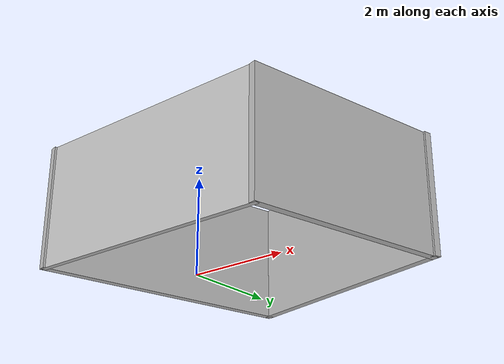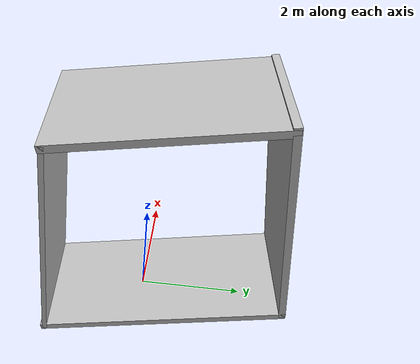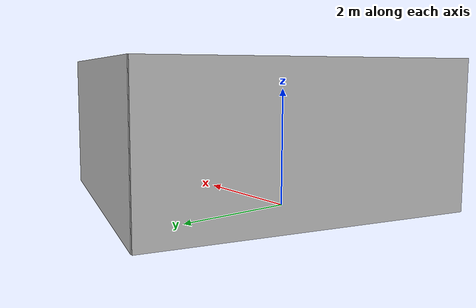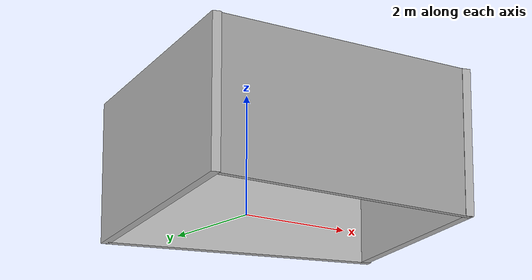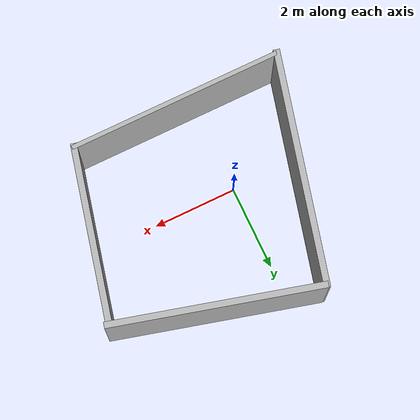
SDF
<?xml version='1.0'?>
<sdf version='1.6'>
  <model name='unevenFourWallTextured'>
    <pose frame=''>1.00675 0.586158 0 0 -0 0</pose>
    <link name='Wall_12'>
      <collision name='Wall_12_Collision'>
        <geometry>
          <box>
            <size>5.1 0.1 2.5</size>
          </box>
        </geometry>
        <pose frame=''>0 0 1.25 0 -0 0</pose>
      </collision>
      <visual name='Wall_12_Visual'>
        <pose frame=''>0 0 1.25 0 -0 0</pose>
        <geometry>
          <box>
            <size>5.1 0.1 2.5</size>
          </box>
        </geometry>
        <material>
          <script>
            <uri>model://unevenFourWallTextured/materials/scripts/cardboard.material</uri>
            <name>cardboard</name>
          </script>
        </material>
        <meta>
          <layer>0</layer>
        </meta>
      </visual>
      <pose frame=''>-0.506749 -2.58616 0 0 -0 0</pose>
    </link>
    <link name='Wall_15'>
      <collision name='Wall_15_Collision'>
        <geometry>
          <box>
            <size>4.18493 0.15 2.5</size>
          </box>
        </geometry>
        <pose frame=''>0 0 1.25 0 -0 0</pose>
      </collision>
      <visual name='Wall_15_Visual'>
        <pose frame=''>0 0 1.25 0 -0 0</pose>
        <geometry>
          <box>
            <size>4.18493 0.15 2.5</size>
          </box>
        </geometry>
        <material>
          <script>
            <uri>model://unevenFourWallTextured/materials/scripts/cardboard2.material</uri>
            <name>cardboard2</name>
          </script>
        </material>
        <meta>
          <layer>0</layer>
        </meta>
      </visual>
      <pose frame=''>2.47929 -0.628116 0 0 -0 1.32749</pose>
    </link>
    <link name='Wall_16'>
      <collision name='Wall_16_Collision'>
        <geometry>
          <box>
            <size>5 0.15 2.5</size>
          </box>
        </geometry>
        <pose frame=''>0 0 1.25 0 -0 0</pose>
      </collision>
      <visual name='Wall_16_Visual'>
        <pose frame=''>0 0 1.25 0 -0 0</pose>
        <geometry>
          <box>
            <size>5 0.15 2.5</size>
          </box>
        </geometry>
        <material>
          <script>
            <uri>model://unevenFourWallTextured/materials/scripts/cardboard3.material</uri>
            <name>cardboard3</name>
          </script>
        </material>
        <meta>
          <layer>0</layer>
        </meta>
      </visual>
      <pose frame=''>0.663419 1.95756 0 0 -0 2.87979</pose>
    </link>
    <link name='Wall_17'>
      <collision name='Wall_17_Collision'>
        <geometry>
          <box>
            <size>5.47918 0.15 2.5</size>
          </box>
        </geometry>
        <pose frame=''>0 0 1.25 0 -0 0</pose>
      </collision>
      <visual name='Wall_17_Visual'>
        <pose frame=''>0 0 1.25 0 -0 0</pose>
        <geometry>
          <box>
            <size>5.47918 0.15 2.5</size>
          </box>
        </geometry>
        <material>
          <script>
            <uri>model://unevenFourWallTextured/materials/scripts/cardboard4.material</uri>
            <name>cardboard4</name>
          </script>
        </material>
        <meta>
          <layer>0</layer>
        </meta>
      </visual>
      <pose frame=''>-2.36308 -0.00048 0 0 -0 -1.81477</pose>
    </link>
    <static>1</static>
  </model>
</sdf>
